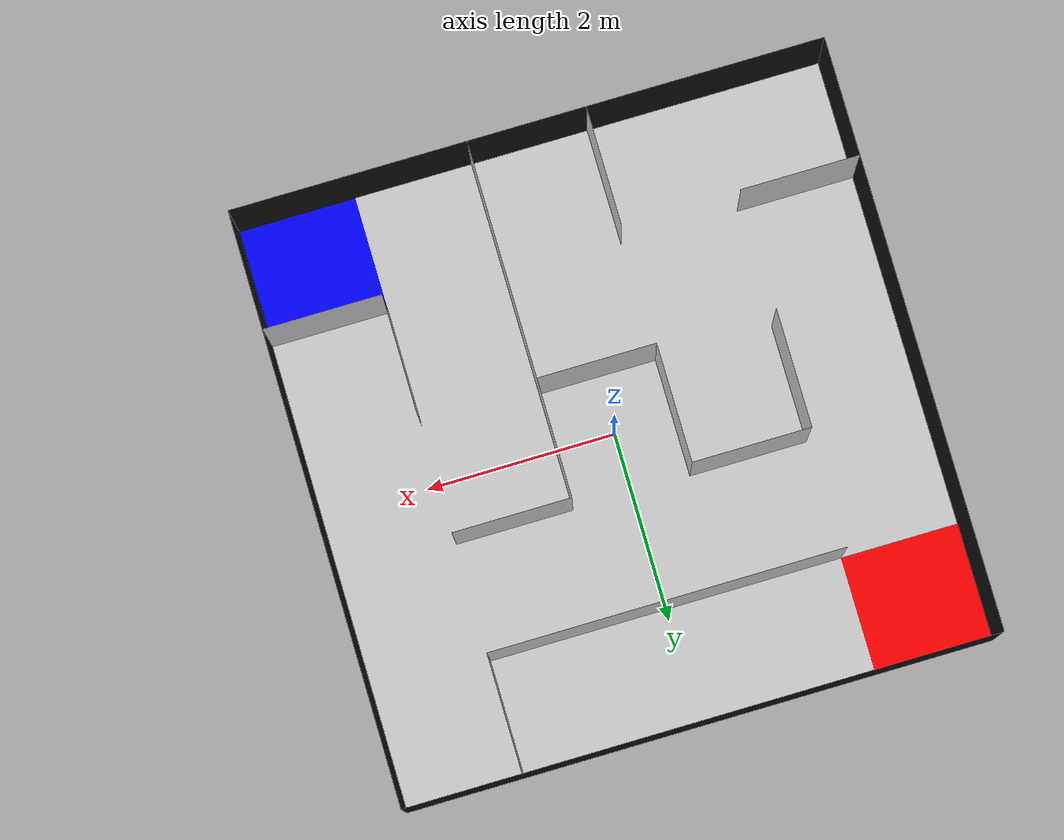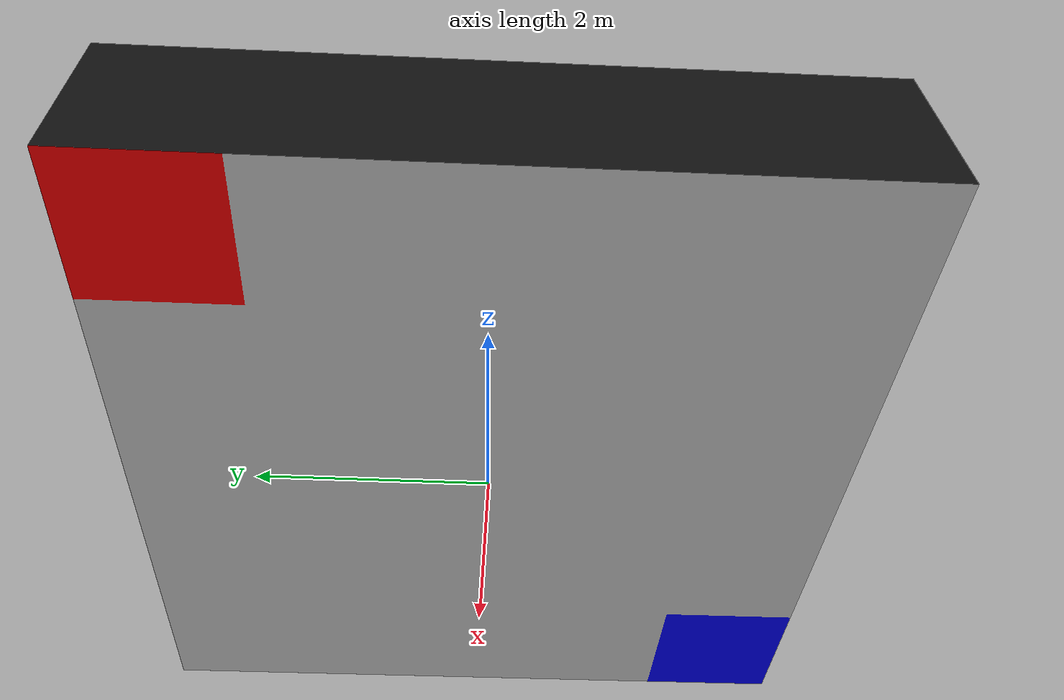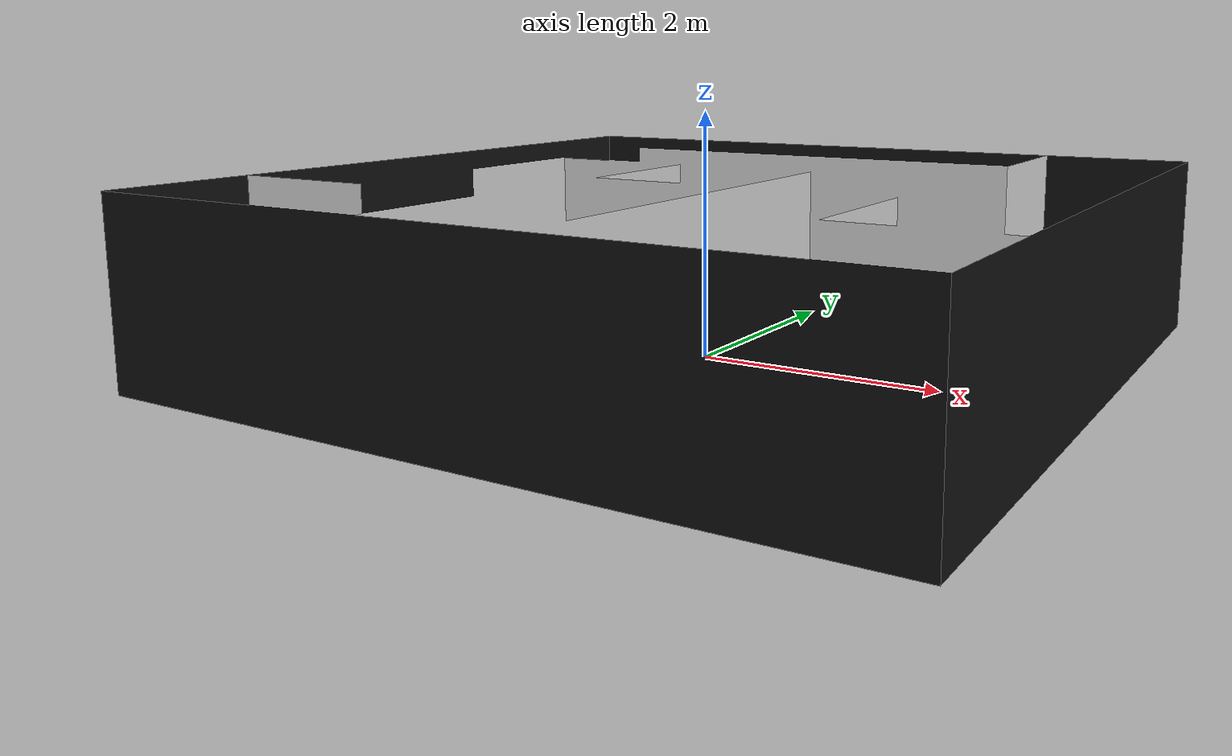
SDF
<sdf version='1.5'>
  <!-- Draw Model -->
  <model name="mazev1">
    <static>true</static>
    <link name="mazev1">
      <collision name="collision">
        <geometry>
          <mesh>
            <uri>model://turtlebot3_maze2/mazev1/mazev1.stl</uri>
          </mesh>
        </geometry>
      </collision>

      <visual name="visual">
        <geometry>
          <mesh>
            <uri>model://turtlebot3_maze2/mazev1/mazev1.dae</uri>
          </mesh>
        </geometry>
      </visual>
    </link>
  </model>
</sdf>
